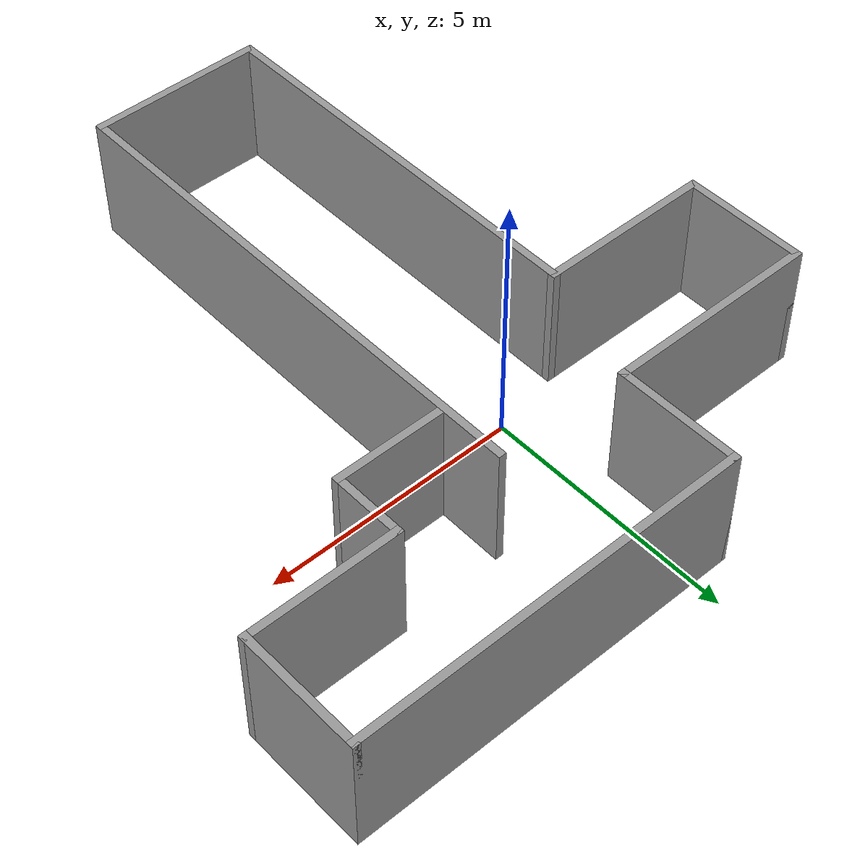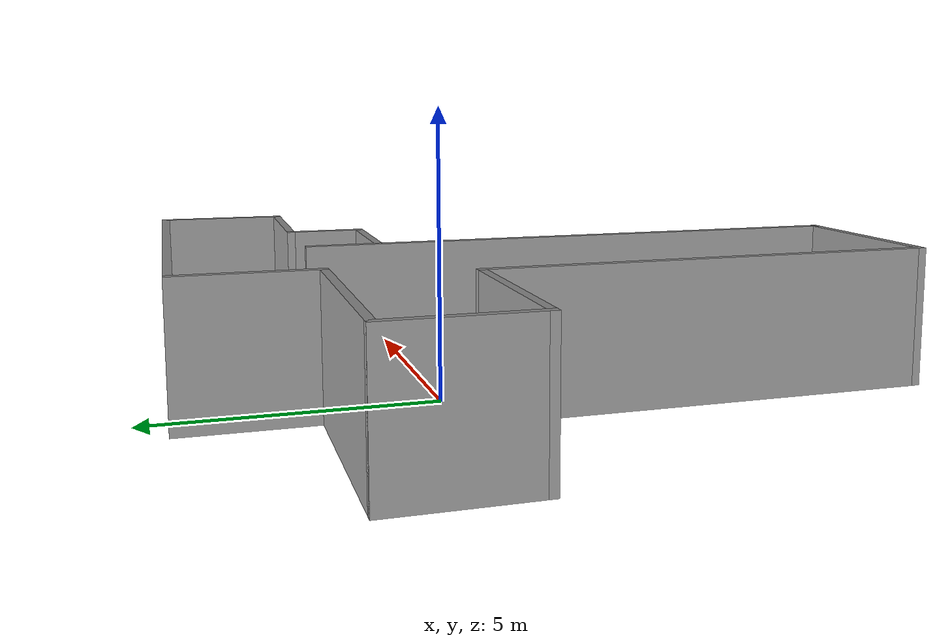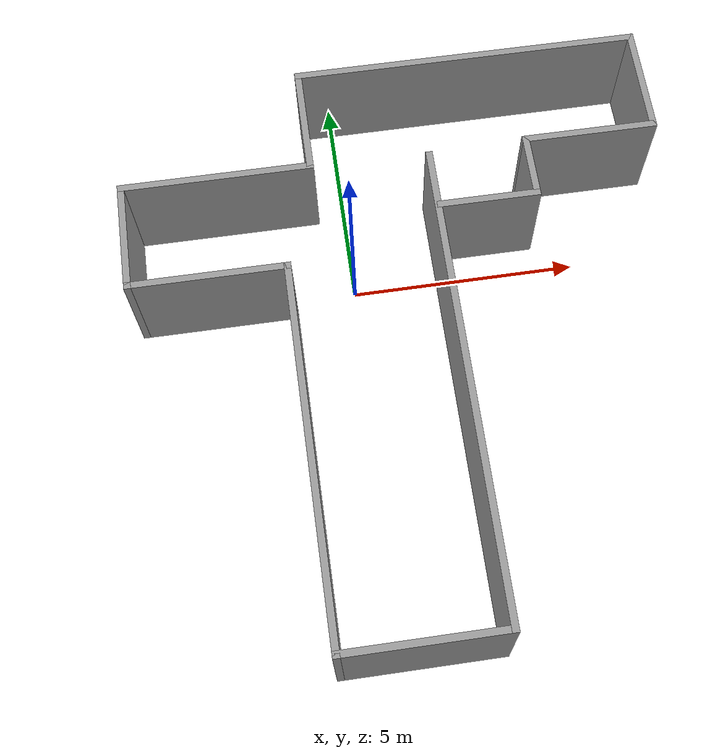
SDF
<?xml version='1.0'?>
<sdf version='1.7'>
  <model name='my_house'>
    <pose>1.08704 -2.03217 0 0 -0 0</pose>
    <link name='Wall_10'>
      <collision name='Wall_10_Collision'>
        <geometry>
          <box>
            <size>2.5 0.15 2.5</size>
          </box>
        </geometry>
        <pose>0 0 1.25 0 -0 0</pose>
      </collision>
      <visual name='Wall_10_Visual'>
        <pose>0 0 1.25 0 -0 0</pose>
        <geometry>
          <box>
            <size>2.5 0.15 2.5</size>
          </box>
        </geometry>
        <material>
          <script>
            <uri>file://media/materials/scripts/gazebo.material</uri>
            <name>Gazebo/Grey</name>
          </script>
          <ambient>1 1 1 1</ambient>
        </material>
        <meta>
          <layer>0</layer>
        </meta>
      </visual>
      <pose>-5.85 2.875 0 0 -0 1.5708</pose>
    </link>
    <link name='Wall_11'>
      <collision name='Wall_11_Collision'>
        <geometry>
          <box>
            <size>4.25 0.15 2.5</size>
          </box>
        </geometry>
        <pose>0 0 1.25 0 -0 0</pose>
      </collision>
      <visual name='Wall_11_Visual'>
        <pose>0 0 1.25 0 -0 0</pose>
        <geometry>
          <box>
            <size>4.25 0.15 2.5</size>
          </box>
        </geometry>
        <material>
          <script>
            <uri>file://media/materials/scripts/gazebo.material</uri>
            <name>Gazebo/Grey</name>
          </script>
          <ambient>1 1 1 1</ambient>
        </material>
        <meta>
          <layer>0</layer>
        </meta>
      </visual>
      <pose>-3.8 4.05 0 0 -0 0</pose>
    </link>
    <link name='Wall_13'>
      <collision name='Wall_13_Collision'>
        <geometry>
          <box>
            <size>2.5 0.15 2.5</size>
          </box>
        </geometry>
        <pose>0 0 1.25 0 -0 0</pose>
      </collision>
      <visual name='Wall_13_Visual'>
        <pose>0 0 1.25 0 -0 0</pose>
        <geometry>
          <box>
            <size>2.5 0.15 2.5</size>
          </box>
        </geometry>
        <material>
          <script>
            <uri>file://media/materials/scripts/gazebo.material</uri>
            <name>Gazebo/Grey</name>
          </script>
          <ambient>1 1 1 1</ambient>
        </material>
        <meta>
          <layer>0</layer>
        </meta>
      </visual>
      <pose>-1.75 5.225 0 0 -0 1.5708</pose>
    </link>
    <link name='Wall_14'>
      <collision name='Wall_14_Collision'>
        <geometry>
          <box>
            <size>7.75 0.15 2.5</size>
          </box>
        </geometry>
        <pose>0 0 1.25 0 -0 0</pose>
      </collision>
      <visual name='Wall_14_Visual'>
        <pose>0 0 1.25 0 -0 0</pose>
        <geometry>
          <box>
            <size>7.75 0.15 2.5</size>
          </box>
        </geometry>
        <material>
          <script>
            <uri>file://media/materials/scripts/gazebo.material</uri>
            <name>Gazebo/Grey</name>
          </script>
          <ambient>1 1 1 1</ambient>
        </material>
        <meta>
          <layer>0</layer>
        </meta>
      </visual>
      <pose>2.05 6.4 0 0 -0 0</pose>
    </link>
    <link name='Wall_15'>
      <collision name='Wall_15_Collision'>
        <geometry>
          <box>
            <size>2.5 0.15 2.5</size>
          </box>
        </geometry>
        <pose>0 0 1.25 0 -0 0</pose>
      </collision>
      <visual name='Wall_15_Visual'>
        <pose>0 0 1.25 0 -0 0</pose>
        <geometry>
          <box>
            <size>2.5 0.15 2.5</size>
          </box>
        </geometry>
        <material>
          <script>
            <uri>file://media/materials/scripts/gazebo.material</uri>
            <name>Gazebo/Grey</name>
          </script>
          <ambient>1 1 1 1</ambient>
        </material>
        <meta>
          <layer>0</layer>
        </meta>
      </visual>
      <pose>5.85 5.225 0 0 -0 -1.5708</pose>
    </link>
    <link name='Wall_16'>
      <collision name='Wall_16_Collision'>
        <geometry>
          <box>
            <size>3 0.15 2.5</size>
          </box>
        </geometry>
        <pose>0 0 1.25 0 -0 0</pose>
      </collision>
      <visual name='Wall_16_Visual'>
        <pose>0 0 1.25 0 -0 0</pose>
        <geometry>
          <box>
            <size>3 0.15 2.5</size>
          </box>
        </geometry>
        <material>
          <script>
            <uri>file://media/materials/scripts/gazebo.material</uri>
            <name>Gazebo/Grey</name>
          </script>
          <ambient>1 1 1 1</ambient>
        </material>
        <meta>
          <layer>0</layer>
        </meta>
      </visual>
      <pose>4.425 4.05 0 0 -0 3.14159</pose>
    </link>
    <link name='Wall_17'>
      <collision name='Wall_17_Collision'>
        <geometry>
          <box>
            <size>1.5 0.15 2.5</size>
          </box>
        </geometry>
        <pose>0 0 1.25 0 -0 0</pose>
      </collision>
      <visual name='Wall_17_Visual'>
        <pose>0 0 1.25 0 -0 0</pose>
        <geometry>
          <box>
            <size>1.5 0.15 2.5</size>
          </box>
        </geometry>
        <material>
          <script>
            <uri>file://media/materials/scripts/gazebo.material</uri>
            <name>Gazebo/Grey</name>
          </script>
          <ambient>1 1 1 1</ambient>
        </material>
        <meta>
          <layer>0</layer>
        </meta>
      </visual>
      <pose>3 3.375 0 0 -0 -1.5708</pose>
    </link>
    <link name='Wall_21'>
      <collision name='Wall_21_Collision'>
        <geometry>
          <box>
            <size>2.25 0.15 2.5</size>
          </box>
        </geometry>
        <pose>0 0 1.25 0 -0 0</pose>
      </collision>
      <visual name='Wall_21_Visual'>
        <pose>0 0 1.25 0 -0 0</pose>
        <geometry>
          <box>
            <size>2.25 0.15 2.5</size>
          </box>
        </geometry>
        <material>
          <script>
            <uri>file://media/materials/scripts/gazebo.material</uri>
            <name>Gazebo/Grey</name>
          </script>
          <ambient>1 1 1 1</ambient>
        </material>
        <meta>
          <layer>0</layer>
        </meta>
      </visual>
      <pose>1.95 2.7 0 0 -0 3.14159</pose>
    </link>
    <link name='Wall_4'>
      <collision name='Wall_4_Collision'>
        <geometry>
          <box>
            <size>10.5 0.15 2.5</size>
          </box>
        </geometry>
        <pose>0 0 1.25 0 -0 0</pose>
      </collision>
      <visual name='Wall_4_Visual'>
        <pose>0 0 1.25 0 -0 0</pose>
        <geometry>
          <box>
            <size>10.5 0.15 2.5</size>
          </box>
        </geometry>
        <material>
          <script>
            <uri>file://media/materials/scripts/gazebo.material</uri>
            <name>Gazebo/Grey</name>
          </script>
          <ambient>1 1 1 1</ambient>
        </material>
        <meta>
          <layer>0</layer>
        </meta>
      </visual>
      <pose>0.85 -1.225 0 0 -0 1.5708</pose>
    </link>
    <link name='Wall_7'>
      <collision name='Wall_7_Collision'>
        <geometry>
          <box>
            <size>3.5 0.15 2.5</size>
          </box>
        </geometry>
        <pose>0 0 1.25 0 -0 0</pose>
      </collision>
      <visual name='Wall_7_Visual'>
        <pose>0 0 1.25 0 -0 0</pose>
        <geometry>
          <box>
            <size>3.5 0.15 2.5</size>
          </box>
        </geometry>
        <material>
          <script>
            <uri>file://media/materials/scripts/gazebo.material</uri>
            <name>Gazebo/Grey</name>
          </script>
          <ambient>1 1 1 1</ambient>
        </material>
        <meta>
          <layer>0</layer>
        </meta>
      </visual>
      <pose>-0.825 -6.4 0 0 -0 3.14159</pose>
    </link>
    <link name='Wall_8'>
      <collision name='Wall_8_Collision'>
        <geometry>
          <box>
            <size>8.25 0.15 2.5</size>
          </box>
        </geometry>
        <pose>0 0 1.25 0 -0 0</pose>
      </collision>
      <visual name='Wall_8_Visual'>
        <pose>0 0 1.25 0 -0 0</pose>
        <geometry>
          <box>
            <size>8.25 0.15 2.5</size>
          </box>
        </geometry>
        <material>
          <script>
            <uri>file://media/materials/scripts/gazebo.material</uri>
            <name>Gazebo/Grey</name>
          </script>
          <ambient>1 1 1 1</ambient>
        </material>
        <meta>
          <layer>0</layer>
        </meta>
      </visual>
      <pose>-2.5 -2.35 0 0 -0 1.5708</pose>
    </link>
    <link name='Wall_9'>
      <collision name='Wall_9_Collision'>
        <geometry>
          <box>
            <size>3.5 0.15 2.5</size>
          </box>
        </geometry>
        <pose>0 0 1.25 0 -0 0</pose>
      </collision>
      <visual name='Wall_9_Visual'>
        <pose>0 0 1.25 0 -0 0</pose>
        <geometry>
          <box>
            <size>3.5 0.15 2.5</size>
          </box>
        </geometry>
        <material>
          <script>
            <uri>file://media/materials/scripts/gazebo.material</uri>
            <name>Gazebo/Grey</name>
          </script>
          <ambient>1 1 1 1</ambient>
        </material>
        <meta>
          <layer>0</layer>
        </meta>
      </visual>
      <pose>-4.175 1.7 0 0 -0 3.14159</pose>
    </link>
    <static>1</static>
  </model>
</sdf>
